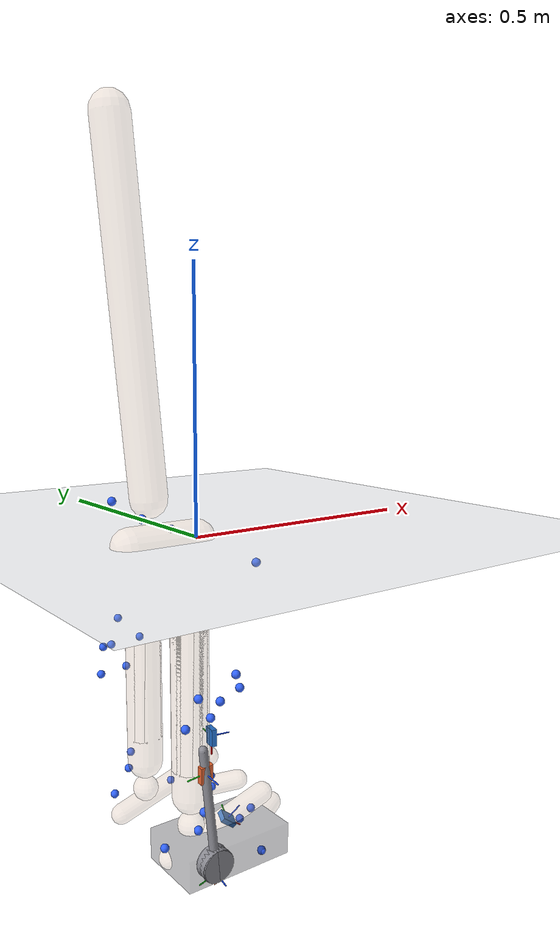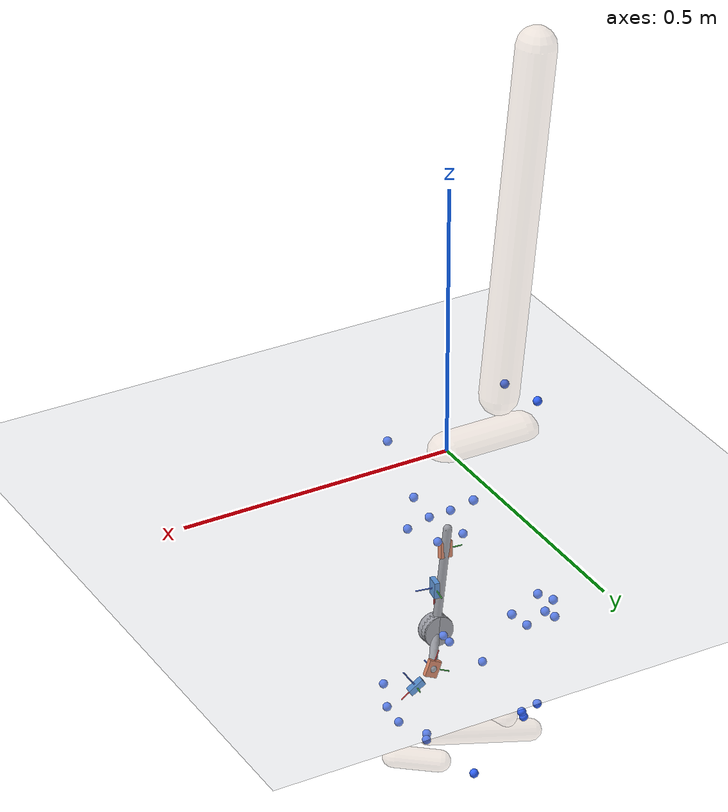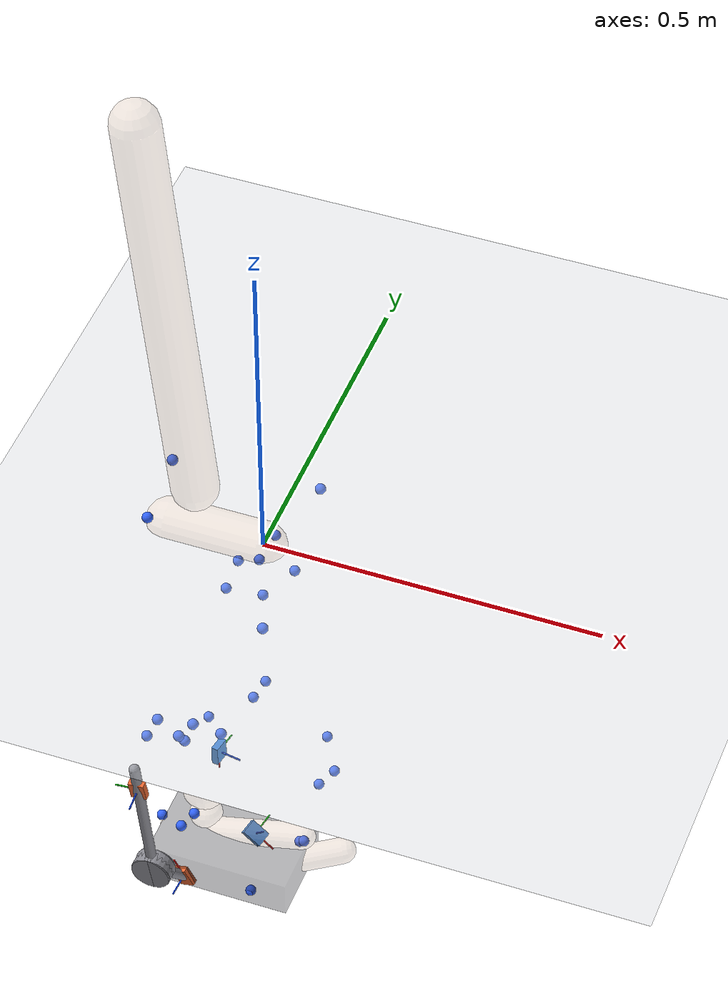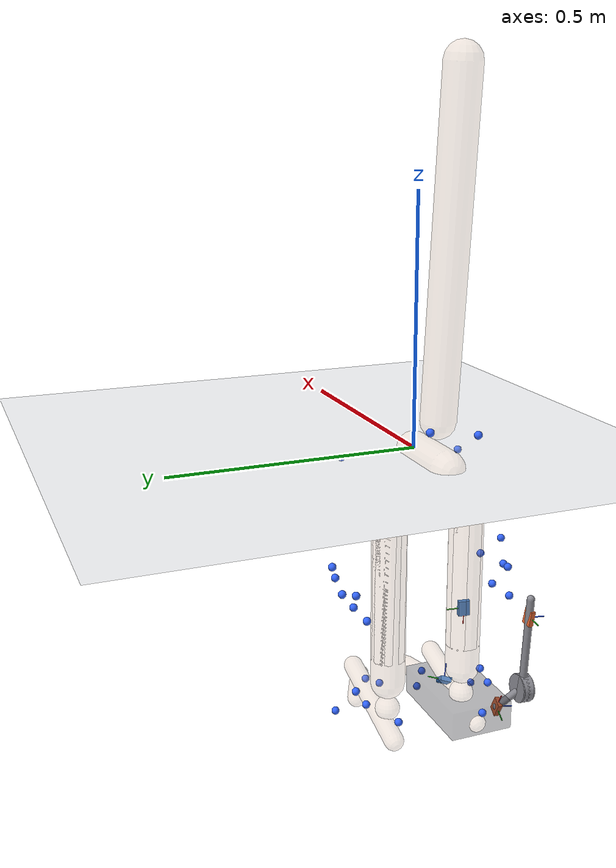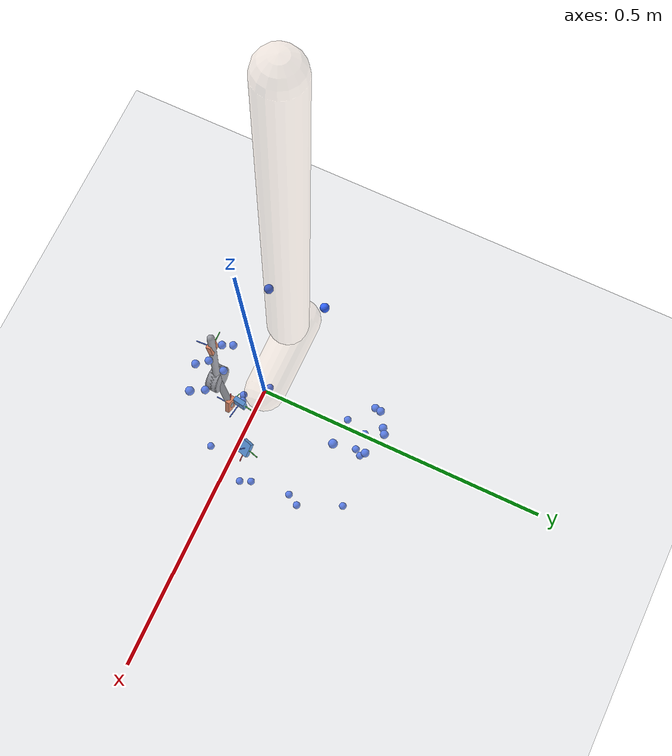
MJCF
<mujoco model="AB30">
  <compiler angle="radian" autolimits="true"/>
  <option timestep="0.005" gravity="0 0 -9.81"><flag contact="disable"/></option>
  <visual><global offwidth="1600" offheight="1200"/>
    <headlight ambient="0.55 0.55 0.55" diffuse="0.6 0.6 0.6"/></visual>
  <default><joint limited="false" damping="0"/><geom contype="0" conaffinity="0"/></default>
  <asset>
    <texture name="grid" type="2d" builtin="checker" rgb1="0.75 0.77 0.8" rgb2="0.85 0.87 0.9" width="512" height="512"/>
    <material name="grid" texture="grid" texrepeat="2 2" texuniform="true"/>
    <material name="skin" rgba="0.85 0.72 0.62 0.28"/>
  </asset>
  <worldbody>
    <light pos="0 0 4" dir="0 0 -1"/>
    <geom name="floor" type="plane" size="0 0 0.05" material="grid"/>
    <body name="pelvis" pos="0 0 0" quat="1 0 0 0">
      <joint name="pelvis_tx" type="slide" axis="1 0 0"/>
      <joint name="pelvis_ty" type="slide" axis="0 0 1"/>
      <joint name="pelvis_tz" type="slide" axis="0 -1 0"/>
      <joint name="pelvis_tilt" type="hinge" axis="0 -1 0"/>
      <joint name="pelvis_list" type="hinge" axis="1 0 0"/>
      <joint name="pelvis_rotation" type="hinge" axis="0 0 1"/>
      <inertial pos="-0.0707 0 0" mass="12.3721" diaginertia="0.12372142 0.12372142 0.12372142"/>
      <geom type="capsule" fromto="0 0 0 -0.1414 0 0" size="0.035" material="skin" mass="0"/>
      <site name="m_R_ASIS" pos="0.046712862 -0.12312792 -0.030536669" size="0.008" rgba="0.2 0.4 1 1" group="2"/>
      <site name="m_L_ASIS" pos="0.03146868 0.14170139 -0.011381091" size="0.008" rgba="0.2 0.4 1 1" group="2"/>
      <site name="m_L_PSIS" pos="-0.15218441 0.041935811 0.076667518" size="0.008" rgba="0.2 0.4 1 1" group="2"/>
      <site name="m_R_PSIS" pos="-0.14857951 -0.059881004 0.059781953" size="0.008" rgba="0.2 0.4 1 1" group="2"/>
      <body name="femur_r" pos="-0.0707 -0.0835 -0.0661" quat="1 0 0 0">
        <joint name="hip_flexion_r" type="hinge" axis="0 -1 0"/>
        <joint name="hip_adduction_r" type="hinge" axis="1 0 0"/>
        <joint name="hip_rotation_r" type="hinge" axis="0 0 1"/>
        <inertial pos="0 0 -0.17" mass="9.77144" diaginertia="0.097714393 0.097714393 0.097714393"/>
        <geom type="capsule" fromto="0 0 0 0 0 -0.34" size="0.035" material="skin" mass="0"/>
        <site name="m_R_Thigh_Upper" pos="0.030761534 -0.098886588 -0.13628925" size="0.008" rgba="0.2 0.4 1 1" group="2"/>
        <site name="m_R_Thigh_Front" pos="0.060171748 -0.06926147 -0.17684685" size="0.008" rgba="0.2 0.4 1 1" group="2"/>
        <site name="m_R_Thigh_Rear" pos="0.0036993026 -0.090592458 -0.18130729" size="0.008" rgba="0.2 0.4 1 1" group="2"/>
        <site name="m_R_Knee_Lat" pos="0.0002000624 -0.043292933 -0.40644097" size="0.008" rgba="0.2 0.4 1 1" group="2"/>
        <body name="tibia_r" pos="0 0 0" quat="1 0 0 0">
<geom name="gt_shank_axis_x" type="capsule" size="0.0012" fromto="0.03360 -0.01880 -0.27950 0.03359 -0.01928 -0.31450" rgba="1 0.1 0.1 1" contype="0" conaffinity="0" mass="0"/>
<geom name="gt_shank_axis_y" type="capsule" size="0.0012" fromto="0.03360 -0.01880 -0.27950 0.03919 0.01575 -0.27998" rgba="0.1 0.8 0.1 1" contype="0" conaffinity="0" mass="0"/>
<geom name="gt_shank_axis_z" type="capsule" size="0.0012" fromto="0.03360 -0.01880 -0.27950 0.06815 -0.02439 -0.27943" rgba="0.1 0.3 1 1" contype="0" conaffinity="0" mass="0"/>
<geom name="exo_shank_axis_x" type="capsule" size="0.0012" fromto="-0.04940 -0.12422 -0.28309 -0.05213 -0.12900 -0.24852" rgba="1 0.1 0.1 1" contype="0" conaffinity="0" mass="0"/>
<geom name="exo_shank_axis_y" type="capsule" size="0.0012" fromto="-0.04940 -0.12422 -0.28309 -0.08428 -0.12468 -0.28591" rgba="0.1 0.8 0.1 1" contype="0" conaffinity="0" mass="0"/>
<geom name="exo_shank_axis_z" type="capsule" size="0.0012" fromto="-0.04940 -0.12422 -0.28309 -0.04856 -0.15889 -0.28782" rgba="0.1 0.3 1 1" contype="0" conaffinity="0" mass="0"/>
<geom name="encoder_shank" type="cylinder" size="0.03 0.012" fromto="-0.03178 -0.13827 -0.45149 -0.03282 -0.11433 -0.45031" rgba="0.55 0.55 0.58 1" contype="0" conaffinity="0" mass="0"/>
<geom name="strut_shank" type="capsule" size="0.008" fromto="-0.03230 -0.12630 -0.45090 -0.05367 -0.12370 -0.24114" rgba="0.55 0.55 0.58 1" contype="0" conaffinity="0" mass="0"/>
          <joint name="knee_r_translation1" type="slide" axis="1 0 0"/>
          <joint name="knee_r_translation2" type="slide" axis="0 0 1"/>
          <joint name="knee_angle_r" type="hinge" axis="0 -1 0"/>
          <inertial pos="0 0 -0.19577681" mass="3.89486" diaginertia="0.038948557 0.038948557 0.038948557"/>
          <geom type="capsule" fromto="0 0 0 0 0 -0.39155361" size="0.035" material="skin" mass="0"/>
          <site name="m_R_Shank_Upper" pos="-0.033159791 -0.079262648 -0.17212852" size="0.008" rgba="0.2 0.4 1 1" group="2"/>
          <site name="m_R_Shank_Front" pos="0.00092680898 -0.065033063 -0.21977186" size="0.008" rgba="0.2 0.4 1 1" group="2"/>
          <site name="m_R_Shank_Rear" pos="-0.055186661 -0.072050182 -0.22379491" size="0.008" rgba="0.2 0.4 1 1" group="2"/>
          <site name="m_R_Ankle_Lat" pos="-0.017839197 -0.052541528 -0.43133711" size="0.008" rgba="0.2 0.4 1 1" group="2"/>
          <site name="gt_shank_imu" type="box" size="0.016 0.012 0.005" pos="0.0336 -0.0188 -0.2795" quat="0.70515347 0.051765704 0.70448128 -0.061522515" rgba="0.16 0.47 0.84 1" group="1"/>
          <site name="exo_shank_imu" type="box" size="0.016 0.012 0.005" pos="-0.049398 -0.124221 -0.283089" quat="-0.43977301 -0.5173114 0.54770907 -0.48887973" rgba="0.92 0.41 0.20 1" group="1"/>
          <body name="talus_r" pos="0 0 -0.45090534" quat="1 0 0 0">
            <joint name="ankle_angle_r" type="hinge" axis="-0.10501355 -0.97912632 -0.17402245"/>
            <inertial pos="0 0 0" mass="0.105053" diaginertia="0.0010505342 0.0010505342 0.0010505342"/>
            <geom type="sphere" size="0.025" material="skin" mass="0"/>
            <body name="calcn_r" pos="-0.051141054 -0.0083050471 -0.043989486" quat="1 0 0 0">
<geom name="gt_foot_axis_x" type="capsule" size="0.0012" fromto="0.13050 0.00580 0.03010 0.15857 0.00316 0.00936" rgba="1 0.1 0.1 1" contype="0" conaffinity="0" mass="0"/>
<geom name="gt_foot_axis_y" type="capsule" size="0.0012" fromto="0.13050 0.00580 0.03010 0.14070 0.03784 0.03983" rgba="0.1 0.8 0.1 1" contype="0" conaffinity="0" mass="0"/>
<geom name="gt_foot_axis_z" type="capsule" size="0.0012" fromto="0.13050 0.00580 0.03010 0.14875 -0.00805 0.05656" rgba="0.1 0.3 1 1" contype="0" conaffinity="0" mass="0"/>
<geom name="exo_foot_axis_x" type="capsule" size="0.0012" fromto="0.04885 -0.07711 -0.00787 0.03485 -0.07954 0.02412" rgba="1 0.1 0.1 1" contype="0" conaffinity="0" mass="0"/>
<geom name="exo_foot_axis_y" type="capsule" size="0.0012" fromto="0.04885 -0.07711 -0.00787 0.01697 -0.07219 -0.02145" rgba="0.1 0.8 0.1 1" contype="0" conaffinity="0" mass="0"/>
<geom name="exo_foot_axis_z" type="capsule" size="0.0012" fromto="0.04885 -0.07711 -0.00787 0.04530 -0.11167 -0.01205" rgba="0.1 0.3 1 1" contype="0" conaffinity="0" mass="0"/>
<geom name="encoder_foot" type="cylinder" size="0.03 0.012" fromto="0.01817 -0.12996 0.04327 0.01943 -0.10604 0.04473" rgba="0.55 0.55 0.58 1" contype="0" conaffinity="0" mass="0"/>
<geom name="strut_foot" type="capsule" size="0.008" fromto="0.01880 -0.11800 0.04400 0.04885 -0.07711 -0.00787" rgba="0.55 0.55 0.58 1" contype="0" conaffinity="0" mass="0"/>
<geom name="shoe" type="box" pos="0.10165 -0.01088 0.00395" size="0.10875 0.06721 0.03000" rgba="0.15 0.15 0.18 0.35" contype="0" conaffinity="0" mass="0"/>
              <joint name="subtalar_angle_r" type="hinge" axis="0.78717961 0.12094949 0.60474746"/>
              <inertial pos="0.10399086 0 0.031197258" mass="1.31317" diaginertia="0.013131678 0.013131678 0.013131678"/>
              <geom type="capsule" fromto="0 0 0 0.20798172 0 0.062394515" size="0.02" material="skin" mass="0"/>
              <site name="m_R_Heel" pos="-0.014105342 -0.0067194464 0.027278913" size="0.008" rgba="0.2 0.4 1 1" group="2"/>
              <site name="m_R_Toe_Lat" pos="0.15321511 -0.072248062 -0.003775864" size="0.008" rgba="0.2 0.4 1 1" group="2"/>
              <site name="m_R_Toe_Med" pos="0.18667541 0.042175989 -0.0060486066" size="0.008" rgba="0.2 0.4 1 1" group="2"/>
              <site name="m_R_Toe_Tip" pos="0.20039661 0.024266781 0.020474921" size="0.008" rgba="0.2 0.4 1 1" group="2"/>
              <site name="gt_foot_imu" type="box" size="0.016 0.012 0.005" pos="0.1305 0.0058 0.0301" quat="0.93185448 0.18068823 0.29883945 -0.098457992" rgba="0.16 0.47 0.84 1" group="1"/>
              <site name="exo_foot_imu" type="box" size="0.016 0.012 0.005" pos="0.048849 -0.077106 -0.007871" quat="-0.39404679 -0.38048535 0.6441321 -0.53390248" rgba="0.92 0.41 0.20 1" group="1"/>
              <body name="toes_r" pos="0.18593566 -0.0011231013 -0.0020798172" quat="1 0 0 0">
                <joint name="mtp_angle_r" type="hinge" axis="-0.5809544 -0.81393611 0"/>
                <inertial pos="0.035980837 0.0181984 0.0062394515" mass="0.227546" diaginertia="0.0022754572 0.0022754572 0.0022754572"/>
                <geom type="capsule" fromto="0 0 0 0.071961675 0.036396801 0.012478903" size="0.02" material="skin" mass="0"/>
              </body>
            </body>
          </body>
        </body>
      </body>
      <body name="femur_l" pos="-0.0707 0.0835 -0.0661" quat="1 0 0 0">
        <joint name="hip_flexion_l" type="hinge" axis="0 -1 0"/>
        <joint name="hip_adduction_l" type="hinge" axis="-1 0 0"/>
        <joint name="hip_rotation_l" type="hinge" axis="0 0 -1"/>
        <inertial pos="0 0 -0.17" mass="9.77144" diaginertia="0.097714393 0.097714393 0.097714393"/>
        <geom type="capsule" fromto="0 0 0 0 0 -0.34" size="0.035" material="skin" mass="0"/>
        <site name="m_L_Thigh_Upper" pos="0.0068387013 0.11548014 -0.13000726" size="0.008" rgba="0.2 0.4 1 1" group="2"/>
        <site name="m_L_Thigh_Front" pos="0.04483999 0.09444431 -0.17120481" size="0.008" rgba="0.2 0.4 1 1" group="2"/>
        <site name="m_L_Thigh_Rear" pos="-0.0155101 0.10427204 -0.17902109" size="0.008" rgba="0.2 0.4 1 1" group="2"/>
        <site name="m_L_Knee_Lat" pos="0.0039835074 0.066972701 -0.40264267" size="0.008" rgba="0.2 0.4 1 1" group="2"/>
        <body name="tibia_l" pos="0 0 0" quat="1 0 0 0">
          <joint name="knee_l_translation1" type="slide" axis="1 0 0"/>
          <joint name="knee_l_translation2" type="slide" axis="0 0 1"/>
          <joint name="knee_angle_l" type="hinge" axis="0 -1 0"/>
          <inertial pos="0 0 -0.19577681" mass="3.89486" diaginertia="0.038948557 0.038948557 0.038948557"/>
          <geom type="capsule" fromto="0 0 0 0 0 -0.39155361" size="0.035" material="skin" mass="0"/>
          <site name="m_L_Shank_Upper" pos="-0.042228174 0.086801314 -0.17376631" size="0.008" rgba="0.2 0.4 1 1" group="2"/>
          <site name="m_L_Shank_Front" pos="0.0012672208 0.073761565 -0.218979" size="0.008" rgba="0.2 0.4 1 1" group="2"/>
          <site name="m_L_Shank_Rear" pos="-0.056543795 0.070469698 -0.22240361" size="0.008" rgba="0.2 0.4 1 1" group="2"/>
          <site name="m_L_Ankle_Lat" pos="-0.010193453 0.05078012 -0.427474" size="0.008" rgba="0.2 0.4 1 1" group="2"/>
          <body name="talus_l" pos="0 0 -0.45090534" quat="1 0 0 0">
            <joint name="ankle_angle_l" type="hinge" axis="0.10501355 -0.97912632 0.17402245"/>
            <inertial pos="0 0 0" mass="0.105053" diaginertia="0.0010505342 0.0010505342 0.0010505342"/>
            <geom type="sphere" size="0.025" material="skin" mass="0"/>
            <body name="calcn_l" pos="-0.051141054 0.0083050471 -0.043989486" quat="1 0 0 0">
              <joint name="subtalar_angle_l" type="hinge" axis="-0.78717961 0.12094949 -0.60474746"/>
              <inertial pos="0.10399086 0 0.031197258" mass="1.31317" diaginertia="0.013131678 0.013131678 0.013131678"/>
              <geom type="capsule" fromto="0 0 0 0.20798172 0 0.062394515" size="0.02" material="skin" mass="0"/>
              <site name="m_L_Heel" pos="-0.014664143 -0.0025343246 0.048748975" size="0.008" rgba="0.2 0.4 1 1" group="2"/>
              <site name="m_L_Toe_Lat" pos="0.15241679 0.06327455 -0.0017459459" size="0.008" rgba="0.2 0.4 1 1" group="2"/>
              <site name="m_L_Toe_Med" pos="0.18251192 -0.049806079 0.023037706" size="0.008" rgba="0.2 0.4 1 1" group="2"/>
              <site name="m_L_Toe_Tip" pos="0.19764677 -0.024040522 0.031379483" size="0.008" rgba="0.2 0.4 1 1" group="2"/>
              <body name="toes_l" pos="0.18593566 0.0011231013 -0.0020798172" quat="1 0 0 0">
                <joint name="mtp_angle_l" type="hinge" axis="0.5809544 -0.81393611 0"/>
                <inertial pos="0.035980837 -0.0181984 0.0062394515" mass="0.227546" diaginertia="0.0022754572 0.0022754572 0.0022754572"/>
                <geom type="capsule" fromto="0 0 0 0.071961675 -0.036396801 0.012478903" size="0.02" material="skin" mass="0"/>
              </body>
            </body>
          </body>
        </body>
      </body>
      <body name="torso" pos="-0.1007 0 0.0815" quat="1 0 0 0">
        <joint name="lumbar_extension" type="hinge" axis="0 -1 0"/>
        <joint name="lumbar_bending" type="hinge" axis="1 0 0"/>
        <joint name="lumbar_rotation" type="hinge" axis="0 0 1"/>
        <inertial pos="-0.03 0 0.32" mass="35.9667" diaginertia="0.35966721 0.35966721 0.35966721"/>
        <geom type="capsule" fromto="0 0 0 -0.06 0 0.64" size="0.035" material="skin" mass="0"/>
      </body>
    </body>
  </worldbody>
  <sensor>
<accelerometer name="gt_foot_imu_acc" site="gt_foot_imu"/>
<gyro name="gt_foot_imu_gyr" site="gt_foot_imu"/>
<accelerometer name="exo_foot_imu_acc" site="exo_foot_imu"/>
<gyro name="exo_foot_imu_gyr" site="exo_foot_imu"/>
<accelerometer name="gt_shank_imu_acc" site="gt_shank_imu"/>
<gyro name="gt_shank_imu_gyr" site="gt_shank_imu"/>
<accelerometer name="exo_shank_imu_acc" site="exo_shank_imu"/>
<gyro name="exo_shank_imu_gyr" site="exo_shank_imu"/>
</sensor>
</mujoco>
